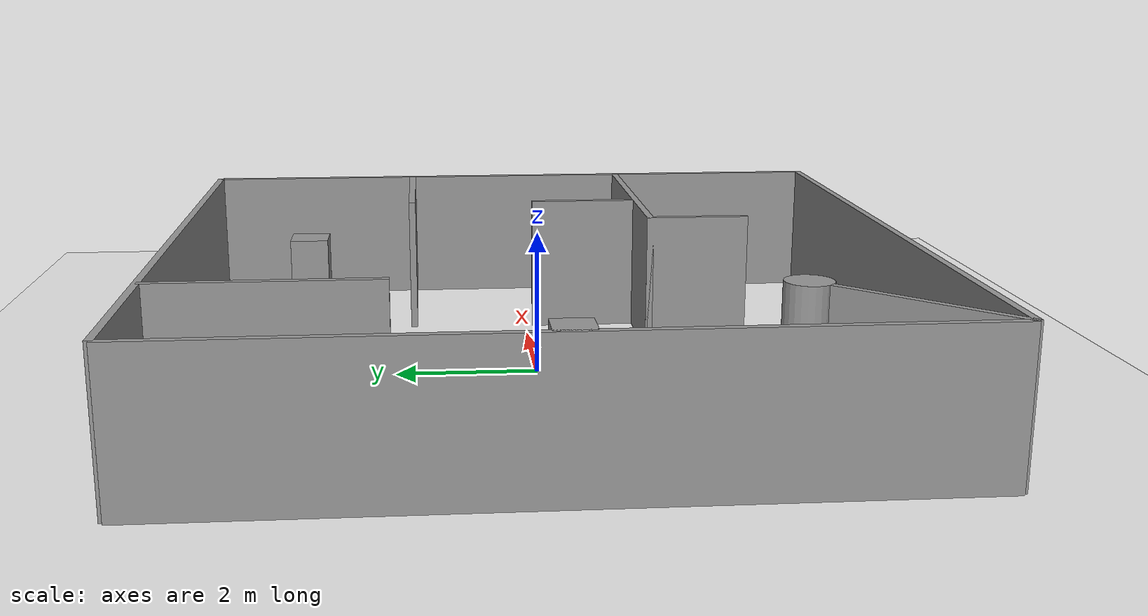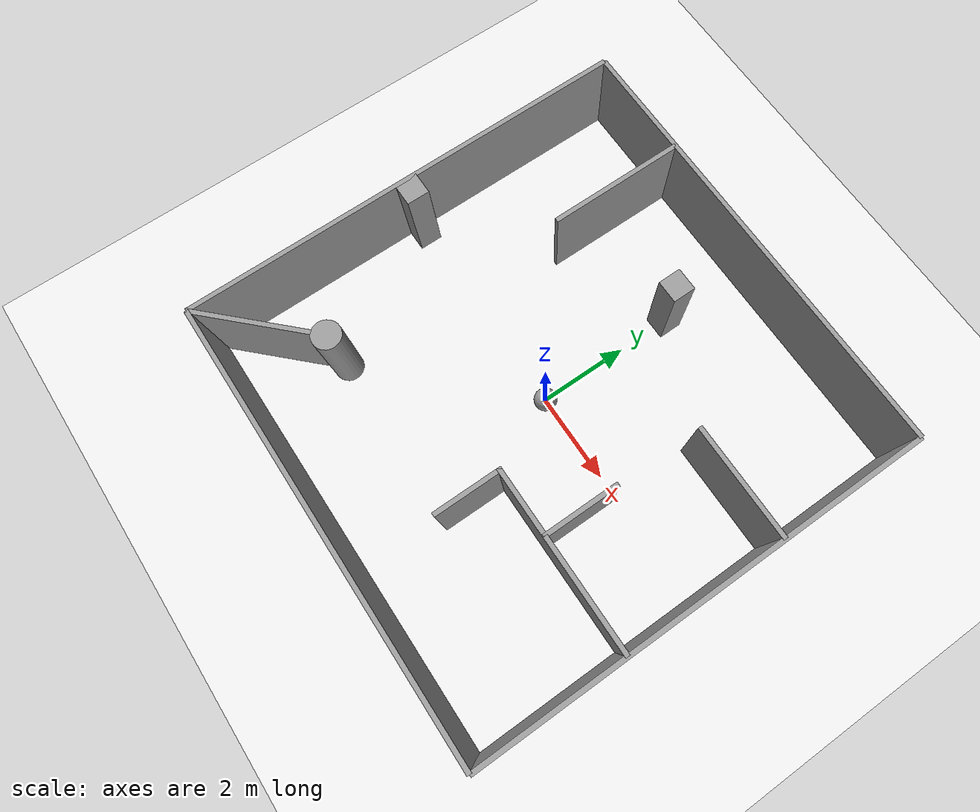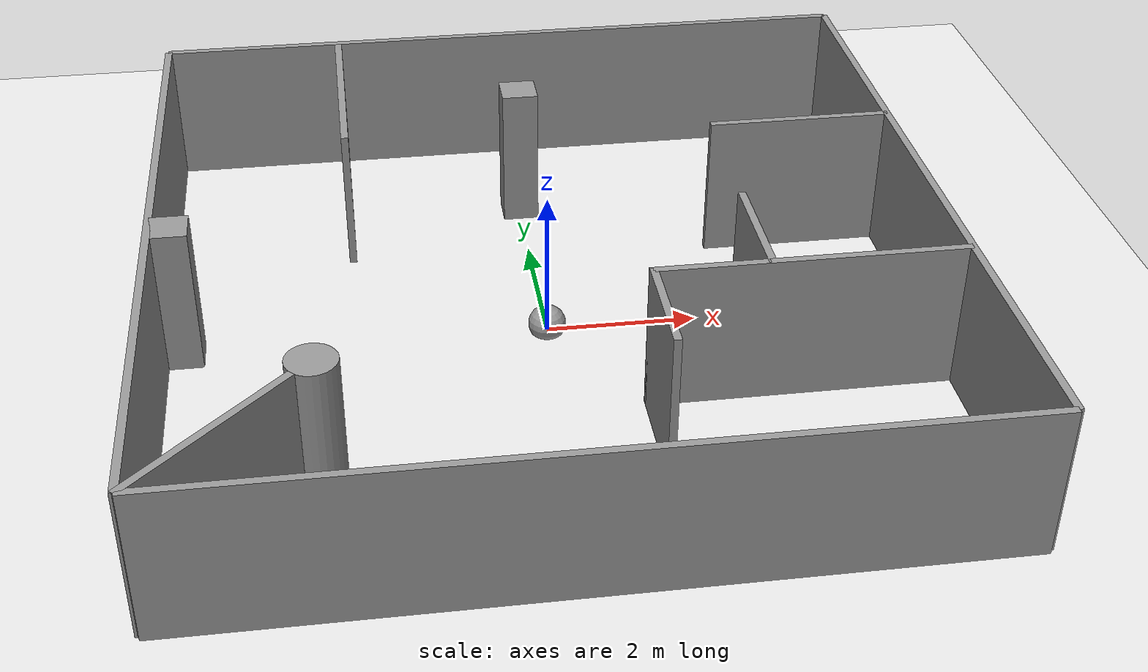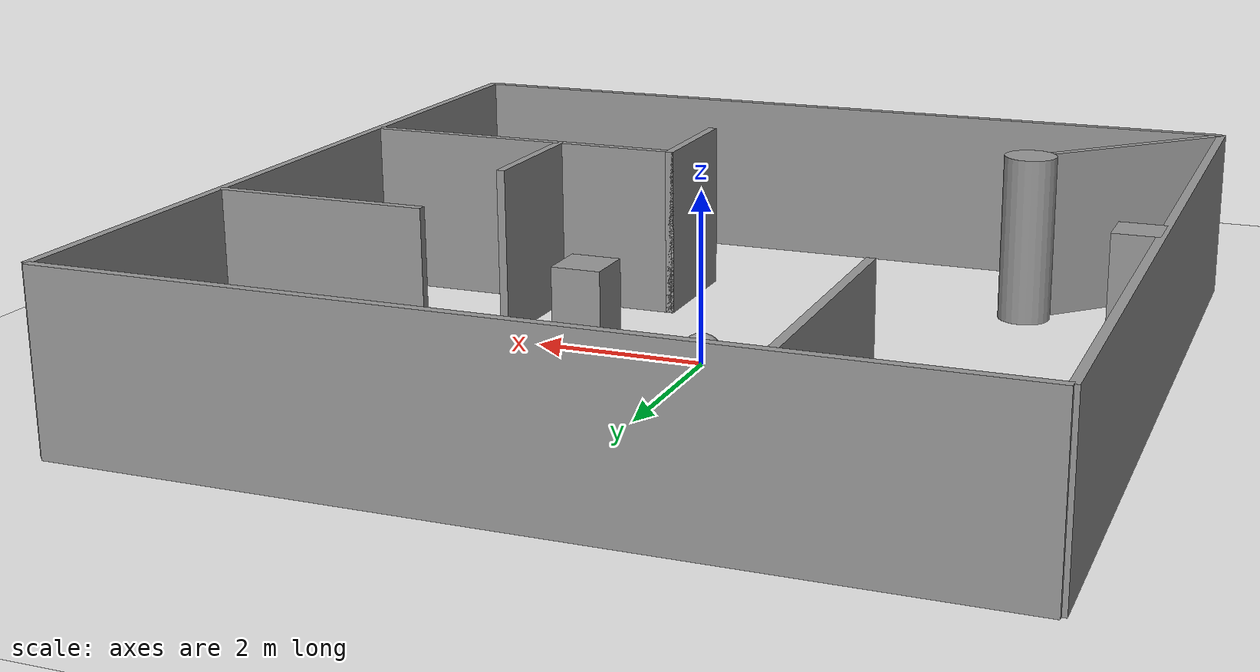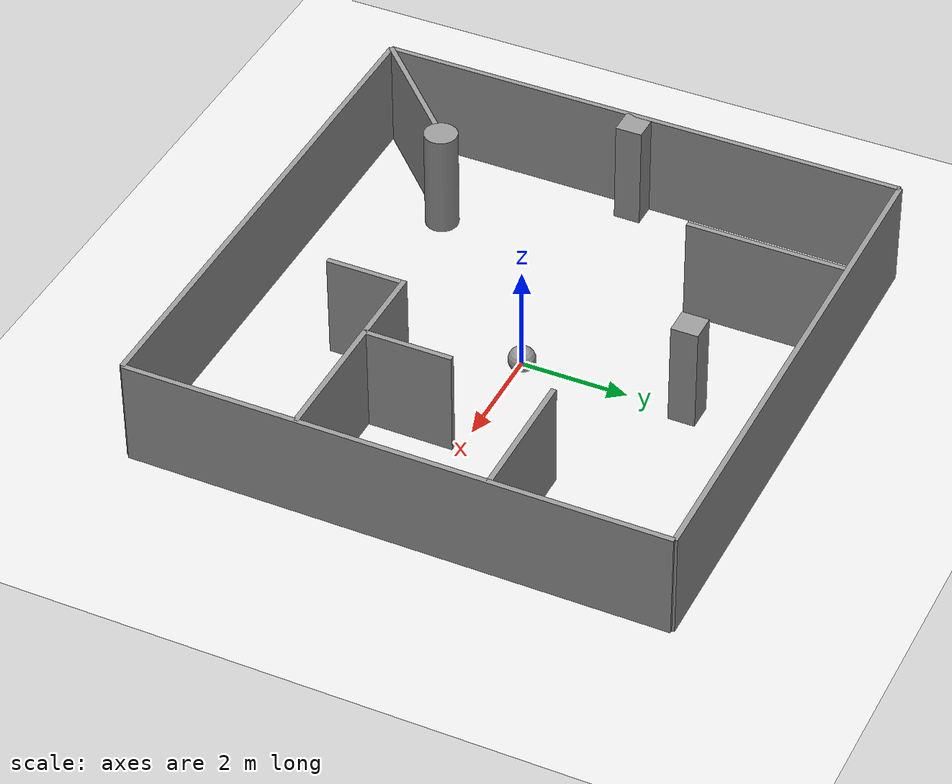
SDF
<sdf version="1.6">
 <world name="default">
  <light name="sun" type="directional">
   <pose>0 0 10 0 -0 0</pose>
   <diffuse>0.8 0.8 0.8 1</diffuse>
   <specular>0.2 0.2 0.2 1</specular>
   <attenuation>
    <range>1000</range>
    <constant>0.9</constant>
    <linear>0.01</linear>
    <quadratic>0.001</quadratic>
   </attenuation>
   <direction>-0.5 0.1 -0.9</direction>
  </light>
  <model name="ground_plane">
   <static>1</static>
   <link name="link">
    <collision name="collision">
     <geometry><plane><normal>0 0 1</normal><size>100 100</size></plane></geometry>
     <surface>
      <contact><collide_bitmask>65535</collide_bitmask></contact>
      <friction><ode><mu>100</mu><mu2>50</mu2></ode></friction>
     </surface>
    </collision>
    <visual name="visual">
     <cast_shadows>0</cast_shadows>
     <geometry><plane><normal>0 0 1</normal><size>100 100</size></plane></geometry>
     <material>
      <script><uri>file://media/materials/scripts/gazebo.material</uri><name>Gazebo/White</name></script>
     </material>
    </visual>
   </link>
  </model>
  <gravity>0 0 -9.8</gravity>
  <magnetic_field>6e-06 2.3e-05 -4.2e-05</magnetic_field>
  <atmosphere type="adiabatic"/>
  <physics name="default_physics" default="0" type="ode">
   <max_step_size>0.001</max_step_size>
   <real_time_factor>1</real_time_factor>
   <real_time_update_rate>1000</real_time_update_rate>
  </physics>
  <scene><ambient>0.4 0.4 0.4 1</ambient><background>0.7 0.7 0.7 1</background><shadows>1</shadows></scene>
  <spherical_coordinates>
   <surface_model>EARTH_WGS84</surface_model>
   <latitude_deg>0</latitude_deg>
   <longitude_deg>0</longitude_deg>
   <elevation>0</elevation>
   <heading_deg>0</heading_deg>
  </spherical_coordinates>
  <model name="small_environment">
   <link name="link_0">
    <inertial>
     <mass>1</mass>
     <inertia>
      <ixx>0.166667</ixx>
      <ixy>0</ixy>
      <ixz>0</ixz>
      <iyy>0.166667</iyy>
      <iyz>0</iyz>
      <izz>0.166667</izz>
     </inertia>
    </inertial>
    <pose>0 -5 1 0 -0 0</pose>
    <visual name="visual">
     <geometry><box><size>10 0.1 2</size></box></geometry>
     <material>
      <lighting>1</lighting>
      <script><uri>file://media/materials/scripts/gazebo.material</uri><name>Gazebo/Grey</name></script>
      <shader type="pixel"><normal_map>__default__</normal_map></shader>
      <ambient>0.3 0.3 0.3 1</ambient>
      <diffuse>0.7 0.7 0.7 1</diffuse>
      <specular>0.01 0.01 0.01 1</specular>
      <emissive>0 0 0 1</emissive>
     </material>
    </visual>
    <collision name="collision">
     <geometry><box><size>10 0.1 2</size></box></geometry>
     <surface>
      <friction>
       <ode><mu>1</mu><mu2>1</mu2><fdir1>0 0 0</fdir1><slip1>0</slip1><slip2>0</slip2></ode>
       <torsional>
        <coefficient>1</coefficient>
        <patch_radius>0</patch_radius>
        <surface_radius>0</surface_radius>
        <use_patch_radius>1</use_patch_radius>
        <ode><slip>0</slip></ode>
       </torsional>
      </friction>
      <bounce><restitution_coefficient>0</restitution_coefficient><threshold>1e+06</threshold></bounce>
      <contact>
       <collide_without_contact>0</collide_without_contact>
       <collide_without_contact_bitmask>1</collide_without_contact_bitmask>
       <collide_bitmask>1</collide_bitmask>
       <ode>
        <soft_cfm>0</soft_cfm>
        <soft_erp>0.2</soft_erp>
        <kp>1e+13</kp>
        <kd>1</kd>
        <max_vel>0.01</max_vel>
        <min_depth>0</min_depth>
       </ode>
       <bullet>
        <split_impulse>1</split_impulse>
        <split_impulse_penetration_threshold>-0.01</split_impulse_penetration_threshold>
        <soft_cfm>0</soft_cfm>
        <soft_erp>0.2</soft_erp>
        <kp>1e+13</kp>
        <kd>1</kd>
       </bullet>
      </contact>
     </surface>
    </collision>
   </link>
   <link name="link_0_clone">
    <inertial>
     <mass>1</mass>
     <inertia>
      <ixx>0.166667</ixx>
      <ixy>0</ixy>
      <ixz>0</ixz>
      <iyy>0.166667</iyy>
      <iyz>0</iyz>
      <izz>0.166667</izz>
     </inertia>
    </inertial>
    <pose>0 5 1 0 -0 0</pose>
    <visual name="visual">
     <geometry><box><size>10 0.1 2</size></box></geometry>
     <material>
      <lighting>1</lighting>
      <script><uri>file://media/materials/scripts/gazebo.material</uri><name>Gazebo/Grey</name></script>
      <shader type="pixel"><normal_map>__default__</normal_map></shader>
      <ambient>0.3 0.3 0.3 1</ambient>
      <diffuse>0.7 0.7 0.7 1</diffuse>
      <specular>0.01 0.01 0.01 1</specular>
      <emissive>0 0 0 1</emissive>
     </material>
    </visual>
    <collision name="collision">
     <geometry><box><size>10 0.1 2</size></box></geometry>
     <surface>
      <friction>
       <ode><mu>1</mu><mu2>1</mu2><fdir1>0 0 0</fdir1><slip1>0</slip1><slip2>0</slip2></ode>
       <torsional>
        <coefficient>1</coefficient>
        <patch_radius>0</patch_radius>
        <surface_radius>0</surface_radius>
        <use_patch_radius>1</use_patch_radius>
        <ode><slip>0</slip></ode>
       </torsional>
      </friction>
      <bounce><restitution_coefficient>0</restitution_coefficient><threshold>1e+06</threshold></bounce>
      <contact>
       <collide_without_contact>0</collide_without_contact>
       <collide_without_contact_bitmask>1</collide_without_contact_bitmask>
       <collide_bitmask>1</collide_bitmask>
       <ode>
        <soft_cfm>0</soft_cfm>
        <soft_erp>0.2</soft_erp>
        <kp>1e+13</kp>
        <kd>1</kd>
        <max_vel>0.01</max_vel>
        <min_depth>0</min_depth>
       </ode>
       <bullet>
        <split_impulse>1</split_impulse>
        <split_impulse_penetration_threshold>-0.01</split_impulse_penetration_threshold>
        <soft_cfm>0</soft_cfm>
        <soft_erp>0.2</soft_erp>
        <kp>1e+13</kp>
        <kd>1</kd>
       </bullet>
      </contact>
     </surface>
    </collision>
   </link>
   <link name="link_0_clone_0">
    <inertial>
     <mass>1</mass>
     <inertia>
      <ixx>0.166667</ixx>
      <ixy>0</ixy>
      <ixz>0</ixz>
      <iyy>0.166667</iyy>
      <iyz>0</iyz>
      <izz>0.166667</izz>
     </inertia>
    </inertial>
    <pose>-5 0 1 0 -0 0</pose>
    <visual name="visual">
     <geometry><box><size>0.1 10 2</size></box></geometry>
     <material>
      <lighting>1</lighting>
      <script><uri>file://media/materials/scripts/gazebo.material</uri><name>Gazebo/Grey</name></script>
      <shader type="pixel"><normal_map>__default__</normal_map></shader>
      <ambient>0.3 0.3 0.3 1</ambient>
      <diffuse>0.7 0.7 0.7 1</diffuse>
      <specular>0.01 0.01 0.01 1</specular>
      <emissive>0 0 0 1</emissive>
     </material>
    </visual>
    <collision name="collision">
     <geometry><box><size>0.1 10 2</size></box></geometry>
     <surface>
      <friction>
       <ode><mu>1</mu><mu2>1</mu2><fdir1>0 0 0</fdir1><slip1>0</slip1><slip2>0</slip2></ode>
       <torsional>
        <coefficient>1</coefficient>
        <patch_radius>0</patch_radius>
        <surface_radius>0</surface_radius>
        <use_patch_radius>1</use_patch_radius>
        <ode><slip>0</slip></ode>
       </torsional>
      </friction>
      <bounce><restitution_coefficient>0</restitution_coefficient><threshold>1e+06</threshold></bounce>
      <contact>
       <collide_without_contact>0</collide_without_contact>
       <collide_without_contact_bitmask>1</collide_without_contact_bitmask>
       <collide_bitmask>1</collide_bitmask>
       <ode>
        <soft_cfm>0</soft_cfm>
        <soft_erp>0.2</soft_erp>
        <kp>1e+13</kp>
        <kd>1</kd>
        <max_vel>0.01</max_vel>
        <min_depth>0</min_depth>
       </ode>
       <bullet>
        <split_impulse>1</split_impulse>
        <split_impulse_penetration_threshold>-0.01</split_impulse_penetration_threshold>
        <soft_cfm>0</soft_cfm>
        <soft_erp>0.2</soft_erp>
        <kp>1e+13</kp>
        <kd>1</kd>
       </bullet>
      </contact>
     </surface>
    </collision>
   </link>
   <link name="link_0_clone_0_clone">
    <inertial>
     <mass>1</mass>
     <inertia>
      <ixx>0.166667</ixx>
      <ixy>0</ixy>
      <ixz>0</ixz>
      <iyy>0.166667</iyy>
      <iyz>0</iyz>
      <izz>0.166667</izz>
     </inertia>
    </inertial>
    <pose>5 0 1 0 -0 0</pose>
    <visual name="visual">
     <geometry><box><size>0.1 10 2</size></box></geometry>
     <material>
      <lighting>1</lighting>
      <script><uri>file://media/materials/scripts/gazebo.material</uri><name>Gazebo/Grey</name></script>
      <shader type="pixel"><normal_map>__default__</normal_map></shader>
      <ambient>0.3 0.3 0.3 1</ambient>
      <diffuse>0.7 0.7 0.7 1</diffuse>
      <specular>0.01 0.01 0.01 1</specular>
      <emissive>0 0 0 1</emissive>
     </material>
    </visual>
    <collision name="collision">
     <geometry><box><size>0.1 10 2</size></box></geometry>
     <surface>
      <friction>
       <ode><mu>1</mu><mu2>1</mu2><fdir1>0 0 0</fdir1><slip1>0</slip1><slip2>0</slip2></ode>
       <torsional>
        <coefficient>1</coefficient>
        <patch_radius>0</patch_radius>
        <surface_radius>0</surface_radius>
        <use_patch_radius>1</use_patch_radius>
        <ode><slip>0</slip></ode>
       </torsional>
      </friction>
      <bounce><restitution_coefficient>0</restitution_coefficient><threshold>1e+06</threshold></bounce>
      <contact>
       <collide_without_contact>0</collide_without_contact>
       <collide_without_contact_bitmask>1</collide_without_contact_bitmask>
       <collide_bitmask>1</collide_bitmask>
       <ode>
        <soft_cfm>0</soft_cfm>
        <soft_erp>0.2</soft_erp>
        <kp>1e+13</kp>
        <kd>1</kd>
        <max_vel>0.01</max_vel>
        <min_depth>0</min_depth>
       </ode>
       <bullet>
        <split_impulse>1</split_impulse>
        <split_impulse_penetration_threshold>-0.01</split_impulse_penetration_threshold>
        <soft_cfm>0</soft_cfm>
        <soft_erp>0.2</soft_erp>
        <kp>1e+13</kp>
        <kd>1</kd>
       </bullet>
      </contact>
     </surface>
    </collision>
   </link>
   <link name="link_0_clone_0_clone_0">
    <inertial>
     <mass>1</mass>
     <inertia>
      <ixx>0.166667</ixx>
      <ixy>0</ixy>
      <ixz>0</ixz>
      <iyy>0.166667</iyy>
      <iyz>0</iyz>
      <izz>0.166667</izz>
     </inertia>
    </inertial>
    <pose>-2.5 3.5 1 0 -0 0</pose>
    <visual name="visual">
     <geometry><box><size>0.1 3 2</size></box></geometry>
     <material>
      <lighting>1</lighting>
      <script><uri>file://media/materials/scripts/gazebo.material</uri><name>Gazebo/Grey</name></script>
      <shader type="pixel"><normal_map>__default__</normal_map></shader>
      <ambient>0.3 0.3 0.3 1</ambient>
      <diffuse>0.7 0.7 0.7 1</diffuse>
      <specular>0.01 0.01 0.01 1</specular>
      <emissive>0 0 0 1</emissive>
     </material>
    </visual>
    <collision name="collision">
     <geometry><box><size>0.1 3 2</size></box></geometry>
     <surface>
      <friction>
       <ode><mu>1</mu><mu2>1</mu2><fdir1>0 0 0</fdir1><slip1>0</slip1><slip2>0</slip2></ode>
       <torsional>
        <coefficient>1</coefficient>
        <patch_radius>0</patch_radius>
        <surface_radius>0</surface_radius>
        <use_patch_radius>1</use_patch_radius>
        <ode><slip>0</slip></ode>
       </torsional>
      </friction>
      <bounce><restitution_coefficient>0</restitution_coefficient><threshold>1e+06</threshold></bounce>
      <contact>
       <collide_without_contact>0</collide_without_contact>
       <collide_without_contact_bitmask>1</collide_without_contact_bitmask>
       <collide_bitmask>1</collide_bitmask>
       <ode>
        <soft_cfm>0</soft_cfm>
        <soft_erp>0.2</soft_erp>
        <kp>1e+13</kp>
        <kd>1</kd>
        <max_vel>0.01</max_vel>
        <min_depth>0</min_depth>
       </ode>
       <bullet>
        <split_impulse>1</split_impulse>
        <split_impulse_penetration_threshold>-0.01</split_impulse_penetration_threshold>
        <soft_cfm>0</soft_cfm>
        <soft_erp>0.2</soft_erp>
        <kp>1e+13</kp>
        <kd>1</kd>
       </bullet>
      </contact>
     </surface>
    </collision>
   </link>
   <link name="link_0_clone_0_clone_0_clone_clone">
    <inertial>
     <mass>1</mass>
     <inertia>
      <ixx>0.166667</ixx>
      <ixy>0</ixy>
      <ixz>0</ixz>
      <iyy>0.166667</iyy>
      <iyz>0</iyz>
      <izz>0.166667</izz>
     </inertia>
    </inertial>
    <pose>1.05 -2.45 1 0 -0 0</pose>
    <visual name="visual">
     <geometry><box><size>0.1 1.5 2</size></box></geometry>
     <material>
      <lighting>1</lighting>
      <script><uri>file://media/materials/scripts/gazebo.material</uri><name>Gazebo/Grey</name></script>
      <shader type="pixel"><normal_map>__default__</normal_map></shader>
      <ambient>0.3 0.3 0.3 1</ambient>
      <diffuse>0.7 0.7 0.7 1</diffuse>
      <specular>0.01 0.01 0.01 1</specular>
      <emissive>0 0 0 1</emissive>
     </material>
    </visual>
    <collision name="collision">
     <geometry><box><size>0.1 1.5 2</size></box></geometry>
     <surface>
      <friction>
       <ode><mu>1</mu><mu2>1</mu2><fdir1>0 0 0</fdir1><slip1>0</slip1><slip2>0</slip2></ode>
       <torsional>
        <coefficient>1</coefficient>
        <patch_radius>0</patch_radius>
        <surface_radius>0</surface_radius>
        <use_patch_radius>1</use_patch_radius>
        <ode><slip>0</slip></ode>
       </torsional>
      </friction>
      <bounce><restitution_coefficient>0</restitution_coefficient><threshold>1e+06</threshold></bounce>
      <contact>
       <collide_without_contact>0</collide_without_contact>
       <collide_without_contact_bitmask>1</collide_without_contact_bitmask>
       <collide_bitmask>1</collide_bitmask>
       <ode>
        <soft_cfm>0</soft_cfm>
        <soft_erp>0.2</soft_erp>
        <kp>1e+13</kp>
        <kd>1</kd>
        <max_vel>0.01</max_vel>
        <min_depth>0</min_depth>
       </ode>
       <bullet>
        <split_impulse>1</split_impulse>
        <split_impulse_penetration_threshold>-0.01</split_impulse_penetration_threshold>
        <soft_cfm>0</soft_cfm>
        <soft_erp>0.2</soft_erp>
        <kp>1e+13</kp>
        <kd>1</kd>
       </bullet>
      </contact>
     </surface>
    </collision>
   </link>
   <link name="link_0_clone_0_clone_0_clone_clone_clone">
    <inertial>
     <mass>1</mass>
     <inertia>
      <ixx>0.166667</ixx>
      <ixy>0</ixy>
      <ixz>0</ixz>
      <iyy>0.166667</iyy>
      <iyz>0</iyz>
      <izz>0.166667</izz>
     </inertia>
    </inertial>
    <pose>2.5 -0.95 1 0 -0 0</pose>
    <visual name="visual">
     <geometry><box><size>0.1 1.66667 2</size></box></geometry>
     <material>
      <lighting>1</lighting>
      <script><uri>file://media/materials/scripts/gazebo.material</uri><name>Gazebo/Grey</name></script>
      <shader type="pixel"><normal_map>__default__</normal_map></shader>
      <ambient>0.3 0.3 0.3 1</ambient>
      <diffuse>0.7 0.7 0.7 1</diffuse>
      <specular>0.01 0.01 0.01 1</specular>
      <emissive>0 0 0 1</emissive>
     </material>
    </visual>
    <collision name="collision">
     <geometry><box><size>0.1 1.66667 2</size></box></geometry>
     <surface>
      <friction>
       <ode><mu>1</mu><mu2>1</mu2><fdir1>0 0 0</fdir1><slip1>0</slip1><slip2>0</slip2></ode>
       <torsional>
        <coefficient>1</coefficient>
        <patch_radius>0</patch_radius>
        <surface_radius>0</surface_radius>
        <use_patch_radius>1</use_patch_radius>
        <ode><slip>0</slip></ode>
       </torsional>
      </friction>
      <bounce><restitution_coefficient>0</restitution_coefficient><threshold>1e+06</threshold></bounce>
      <contact>
       <collide_without_contact>0</collide_without_contact>
       <collide_without_contact_bitmask>1</collide_without_contact_bitmask>
       <collide_bitmask>1</collide_bitmask>
       <ode>
        <soft_cfm>0</soft_cfm>
        <soft_erp>0.2</soft_erp>
        <kp>1e+13</kp>
        <kd>1</kd>
        <max_vel>0.01</max_vel>
        <min_depth>0</min_depth>
       </ode>
       <bullet>
        <split_impulse>1</split_impulse>
        <split_impulse_penetration_threshold>-0.01</split_impulse_penetration_threshold>
        <soft_cfm>0</soft_cfm>
        <soft_erp>0.2</soft_erp>
        <kp>1e+13</kp>
        <kd>1</kd>
       </bullet>
      </contact>
     </surface>
    </collision>
   </link>
   <link name="link_0_clone_1">
    <inertial>
     <mass>1</mass>
     <inertia>
      <ixx>0.166667</ixx>
      <ixy>0</ixy>
      <ixz>0</ixz>
      <iyy>0.166667</iyy>
      <iyz>0</iyz>
      <izz>0.166667</izz>
     </inertia>
    </inertial>
    <pose>-4.125 -4.125 1 0 -0 0</pose>
    <visual name="visual">
     <pose>0 0 0 0 -0 0.785398</pose>
     <geometry><box><size>2.5 0.1 2</size></box></geometry>
     <material>
      <lighting>1</lighting>
      <script><uri>file://media/materials/scripts/gazebo.material</uri><name>Gazebo/Grey</name></script>
      <shader type="pixel"><normal_map>__default__</normal_map></shader>
      <ambient>0.3 0.3 0.3 1</ambient>
      <diffuse>0.7 0.7 0.7 1</diffuse>
      <specular>0.01 0.01 0.01 1</specular>
      <emissive>0 0 0 1</emissive>
     </material>
    </visual>
    <collision name="collision">
     <pose>0 0 0 0 -0 0.785398</pose>
     <geometry><box><size>2.5 0.1 2</size></box></geometry>
     <surface>
      <friction>
       <ode><mu>1</mu><mu2>1</mu2><fdir1>0 0 0</fdir1><slip1>0</slip1><slip2>0</slip2></ode>
       <torsional>
        <coefficient>1</coefficient>
        <patch_radius>0</patch_radius>
        <surface_radius>0</surface_radius>
        <use_patch_radius>1</use_patch_radius>
        <ode><slip>0</slip></ode>
       </torsional>
      </friction>
      <bounce><restitution_coefficient>0</restitution_coefficient><threshold>1e+06</threshold></bounce>
      <contact>
       <collide_without_contact>0</collide_without_contact>
       <collide_without_contact_bitmask>1</collide_without_contact_bitmask>
       <collide_bitmask>1</collide_bitmask>
       <ode>
        <soft_cfm>0</soft_cfm>
        <soft_erp>0.2</soft_erp>
        <kp>1e+13</kp>
        <kd>1</kd>
        <max_vel>0.01</max_vel>
        <min_depth>0</min_depth>
       </ode>
       <bullet>
        <split_impulse>1</split_impulse>
        <split_impulse_penetration_threshold>-0.01</split_impulse_penetration_threshold>
        <soft_cfm>0</soft_cfm>
        <soft_erp>0.2</soft_erp>
        <kp>1e+13</kp>
        <kd>1</kd>
       </bullet>
      </contact>
     </surface>
    </collision>
   </link>
   <link name="link_0_clone_clone">
    <inertial>
     <mass>1</mass>
     <inertia>
      <ixx>0.166667</ixx>
      <ixy>0</ixy>
      <ixz>0</ixz>
      <iyy>0.166667</iyy>
      <iyz>0</iyz>
      <izz>0.166667</izz>
     </inertia>
    </inertial>
    <pose>3.75 1.75 1 0 -0 0</pose>
    <visual name="visual">
     <geometry><box><size>2.5 0.1 2</size></box></geometry>
     <material>
      <lighting>1</lighting>
      <script><uri>file://media/materials/scripts/gazebo.material</uri><name>Gazebo/Grey</name></script>
      <shader type="pixel"><normal_map>__default__</normal_map></shader>
      <ambient>0.3 0.3 0.3 1</ambient>
      <diffuse>0.7 0.7 0.7 1</diffuse>
      <specular>0.01 0.01 0.01 1</specular>
      <emissive>0 0 0 1</emissive>
     </material>
    </visual>
    <collision name="collision">
     <geometry><box><size>2.5 0.1 2</size></box></geometry>
     <surface>
      <friction>
       <ode><mu>1</mu><mu2>1</mu2><fdir1>0 0 0</fdir1><slip1>0</slip1><slip2>0</slip2></ode>
       <torsional>
        <coefficient>1</coefficient>
        <patch_radius>0</patch_radius>
        <surface_radius>0</surface_radius>
        <use_patch_radius>1</use_patch_radius>
        <ode><slip>0</slip></ode>
       </torsional>
      </friction>
      <bounce><restitution_coefficient>0</restitution_coefficient><threshold>1e+06</threshold></bounce>
      <contact>
       <collide_without_contact>0</collide_without_contact>
       <collide_without_contact_bitmask>1</collide_without_contact_bitmask>
       <collide_bitmask>1</collide_bitmask>
       <ode>
        <soft_cfm>0</soft_cfm>
        <soft_erp>0.2</soft_erp>
        <kp>1e+13</kp>
        <kd>1</kd>
        <max_vel>0.01</max_vel>
        <min_depth>0</min_depth>
       </ode>
       <bullet>
        <split_impulse>1</split_impulse>
        <split_impulse_penetration_threshold>-0.01</split_impulse_penetration_threshold>
        <soft_cfm>0</soft_cfm>
        <soft_erp>0.2</soft_erp>
        <kp>1e+13</kp>
        <kd>1</kd>
       </bullet>
      </contact>
     </surface>
    </collision>
   </link>
   <link name="link_0_clone_clone_clone">
    <inertial>
     <mass>1</mass>
     <inertia>
      <ixx>0.166667</ixx>
      <ixy>0</ixy>
      <ixz>0</ixz>
      <iyy>0.166667</iyy>
      <iyz>0</iyz>
      <izz>0.166667</izz>
     </inertia>
    </inertial>
    <pose>3 -1.75 1 0 -0 0</pose>
    <visual name="visual">
     <geometry><box><size>4 0.1 2</size></box></geometry>
     <material>
      <lighting>1</lighting>
      <script><uri>file://media/materials/scripts/gazebo.material</uri><name>Gazebo/Grey</name></script>
      <shader type="pixel"><normal_map>__default__</normal_map></shader>
      <ambient>0.3 0.3 0.3 1</ambient>
      <diffuse>0.7 0.7 0.7 1</diffuse>
      <specular>0.01 0.01 0.01 1</specular>
      <emissive>0 0 0 1</emissive>
     </material>
    </visual>
    <collision name="collision">
     <geometry><box><size>4 0.1 2</size></box></geometry>
     <surface>
      <friction>
       <ode><mu>1</mu><mu2>1</mu2><fdir1>0 0 0</fdir1><slip1>0</slip1><slip2>0</slip2></ode>
       <torsional>
        <coefficient>1</coefficient>
        <patch_radius>0</patch_radius>
        <surface_radius>0</surface_radius>
        <use_patch_radius>1</use_patch_radius>
        <ode><slip>0</slip></ode>
       </torsional>
      </friction>
      <bounce><restitution_coefficient>0</restitution_coefficient><threshold>1e+06</threshold></bounce>
      <contact>
       <collide_without_contact>0</collide_without_contact>
       <collide_without_contact_bitmask>1</collide_without_contact_bitmask>
       <collide_bitmask>1</collide_bitmask>
       <ode>
        <soft_cfm>0</soft_cfm>
        <soft_erp>0.2</soft_erp>
        <kp>1e+13</kp>
        <kd>1</kd>
        <max_vel>0.01</max_vel>
        <min_depth>0</min_depth>
       </ode>
       <bullet>
        <split_impulse>1</split_impulse>
        <split_impulse_penetration_threshold>-0.01</split_impulse_penetration_threshold>
        <soft_cfm>0</soft_cfm>
        <soft_erp>0.2</soft_erp>
        <kp>1e+13</kp>
        <kd>1</kd>
       </bullet>
      </contact>
     </surface>
    </collision>
   </link>
   <link name="link_1">
    <inertial>
     <mass>1</mass>
     <inertia>
      <ixx>0.166667</ixx>
      <ixy>0</ixy>
      <ixz>0</ixz>
      <iyy>0.166667</iyy>
      <iyz>0</iyz>
      <izz>0.166667</izz>
     </inertia>
    </inertial>
    <pose>-4.75 0 1 0 -0 0</pose>
    <visual name="visual">
     <geometry><box><size>0.5 0.5 2</size></box></geometry>
     <material>
      <lighting>1</lighting>
      <script><uri>file://media/materials/scripts/gazebo.material</uri><name>Gazebo/Grey</name></script>
      <shader type="pixel"><normal_map>__default__</normal_map></shader>
      <ambient>0.3 0.3 0.3 1</ambient>
      <diffuse>0.7 0.7 0.7 1</diffuse>
      <specular>0.01 0.01 0.01 1</specular>
      <emissive>0 0 0 1</emissive>
     </material>
    </visual>
    <collision name="collision">
     <geometry><box><size>0.5 0.5 2</size></box></geometry>
     <surface>
      <friction>
       <ode><mu>1</mu><mu2>1</mu2><fdir1>0 0 0</fdir1><slip1>0</slip1><slip2>0</slip2></ode>
       <torsional>
        <coefficient>1</coefficient>
        <patch_radius>0</patch_radius>
        <surface_radius>0</surface_radius>
        <use_patch_radius>1</use_patch_radius>
        <ode><slip>0</slip></ode>
       </torsional>
      </friction>
      <bounce><restitution_coefficient>0</restitution_coefficient><threshold>1e+06</threshold></bounce>
      <contact>
       <collide_without_contact>0</collide_without_contact>
       <collide_without_contact_bitmask>1</collide_without_contact_bitmask>
       <collide_bitmask>1</collide_bitmask>
       <ode>
        <soft_cfm>0</soft_cfm>
        <soft_erp>0.2</soft_erp>
        <kp>1e+13</kp>
        <kd>1</kd>
        <max_vel>0.01</max_vel>
        <min_depth>0</min_depth>
       </ode>
       <bullet>
        <split_impulse>1</split_impulse>
        <split_impulse_penetration_threshold>-0.01</split_impulse_penetration_threshold>
        <soft_cfm>0</soft_cfm>
        <soft_erp>0.2</soft_erp>
        <kp>1e+13</kp>
        <kd>1</kd>
       </bullet>
      </contact>
     </surface>
    </collision>
   </link>
   <link name="link_1_clone">
    <inertial>
     <mass>1</mass>
     <inertia>
      <ixx>0.166667</ixx>
      <ixy>0</ixy>
      <ixz>0</ixz>
      <iyy>0.166667</iyy>
      <iyz>0</iyz>
      <izz>0.166667</izz>
     </inertia>
    </inertial>
    <pose>0 3.125 1 0 -0 0</pose>
    <visual name="visual">
     <geometry><box><size>0.5 0.5 2</size></box></geometry>
     <material>
      <lighting>1</lighting>
      <script><uri>file://media/materials/scripts/gazebo.material</uri><name>Gazebo/Grey</name></script>
      <shader type="pixel"><normal_map>__default__</normal_map></shader>
      <ambient>0.3 0.3 0.3 1</ambient>
      <diffuse>0.7 0.7 0.7 1</diffuse>
      <specular>0.01 0.01 0.01 1</specular>
      <emissive>0 0 0 1</emissive>
     </material>
    </visual>
    <collision name="collision">
     <geometry><box><size>0.5 0.5 2</size></box></geometry>
     <surface>
      <friction>
       <ode><mu>1</mu><mu2>1</mu2><fdir1>0 0 0</fdir1><slip1>0</slip1><slip2>0</slip2></ode>
       <torsional>
        <coefficient>1</coefficient>
        <patch_radius>0</patch_radius>
        <surface_radius>0</surface_radius>
        <use_patch_radius>1</use_patch_radius>
        <ode><slip>0</slip></ode>
       </torsional>
      </friction>
      <bounce><restitution_coefficient>0</restitution_coefficient><threshold>1e+06</threshold></bounce>
      <contact>
       <collide_without_contact>0</collide_without_contact>
       <collide_without_contact_bitmask>1</collide_without_contact_bitmask>
       <collide_bitmask>1</collide_bitmask>
       <ode>
        <soft_cfm>0</soft_cfm>
        <soft_erp>0.2</soft_erp>
        <kp>1e+13</kp>
        <kd>1</kd>
        <max_vel>0.01</max_vel>
        <min_depth>0</min_depth>
       </ode>
       <bullet>
        <split_impulse>1</split_impulse>
        <split_impulse_penetration_threshold>-0.01</split_impulse_penetration_threshold>
        <soft_cfm>0</soft_cfm>
        <soft_erp>0.2</soft_erp>
        <kp>1e+13</kp>
        <kd>1</kd>
       </bullet>
      </contact>
     </surface>
    </collision>
   </link>
   <link name="link_4">
    <inertial>
     <mass>1</mass>
     <inertia><ixx>0.1</ixx><ixy>0</ixy><ixz>0</ixz><iyy>0.1</iyy><iyz>0</iyz><izz>0.1</izz></inertia>
    </inertial>
    <pose>0 0 0.107143 0 -0 0</pose>
    <visual name="visual">
     <geometry><sphere><radius>0.25</radius></sphere></geometry>
     <material>
      <lighting>1</lighting>
      <script><uri>file://media/materials/scripts/gazebo.material</uri><name>Gazebo/Grey</name></script>
      <shader type="pixel"><normal_map>__default__</normal_map></shader>
      <ambient>0.3 0.3 0.3 1</ambient>
      <diffuse>0.7 0.7 0.7 1</diffuse>
      <specular>0.01 0.01 0.01 1</specular>
      <emissive>0 0 0 1</emissive>
     </material>
    </visual>
    <collision name="collision">
     <geometry><sphere><radius>0.25</radius></sphere></geometry>
     <surface>
      <friction>
       <ode><mu>1</mu><mu2>1</mu2><fdir1>0 0 0</fdir1><slip1>0</slip1><slip2>0</slip2></ode>
       <torsional>
        <coefficient>1</coefficient>
        <patch_radius>0</patch_radius>
        <surface_radius>0</surface_radius>
        <use_patch_radius>1</use_patch_radius>
        <ode><slip>0</slip></ode>
       </torsional>
      </friction>
      <bounce><restitution_coefficient>0</restitution_coefficient><threshold>1e+06</threshold></bounce>
      <contact>
       <collide_without_contact>0</collide_without_contact>
       <collide_without_contact_bitmask>1</collide_without_contact_bitmask>
       <collide_bitmask>1</collide_bitmask>
       <ode>
        <soft_cfm>0</soft_cfm>
        <soft_erp>0.2</soft_erp>
        <kp>1e+13</kp>
        <kd>1</kd>
        <max_vel>0.01</max_vel>
        <min_depth>0</min_depth>
       </ode>
       <bullet>
        <split_impulse>1</split_impulse>
        <split_impulse_penetration_threshold>-0.01</split_impulse_penetration_threshold>
        <soft_cfm>0</soft_cfm>
        <soft_erp>0.2</soft_erp>
        <kp>1e+13</kp>
        <kd>1</kd>
       </bullet>
      </contact>
     </surface>
    </collision>
   </link>
   <link name="link_5">
    <inertial>
     <mass>1</mass>
     <inertia><ixx>0.145833</ixx><ixy>0</ixy><ixz>0</ixz><iyy>0.145833</iyy><iyz>0</iyz><izz>0.125</izz></inertia>
    </inertial>
    <pose>-3.025 -3.025 1 0 -0 0</pose>
    <visual name="visual">
     <geometry><cylinder><radius>0.3125</radius><length>2</length></cylinder></geometry>
     <material>
      <lighting>1</lighting>
      <script><uri>file://media/materials/scripts/gazebo.material</uri><name>Gazebo/Grey</name></script>
      <shader type="pixel"><normal_map>__default__</normal_map></shader>
      <ambient>0.3 0.3 0.3 1</ambient>
      <diffuse>0.7 0.7 0.7 1</diffuse>
      <specular>0.01 0.01 0.01 1</specular>
      <emissive>0 0 0 1</emissive>
     </material>
    </visual>
    <collision name="collision">
     <geometry><cylinder><radius>0.3125</radius><length>2</length></cylinder></geometry>
     <surface>
      <friction>
       <ode><mu>1</mu><mu2>1</mu2><fdir1>0 0 0</fdir1><slip1>0</slip1><slip2>0</slip2></ode>
       <torsional>
        <coefficient>1</coefficient>
        <patch_radius>0</patch_radius>
        <surface_radius>0</surface_radius>
        <use_patch_radius>1</use_patch_radius>
        <ode><slip>0</slip></ode>
       </torsional>
      </friction>
      <bounce><restitution_coefficient>0</restitution_coefficient><threshold>1e+06</threshold></bounce>
      <contact>
       <collide_without_contact>0</collide_without_contact>
       <collide_without_contact_bitmask>1</collide_without_contact_bitmask>
       <collide_bitmask>1</collide_bitmask>
       <ode>
        <soft_cfm>0</soft_cfm>
        <soft_erp>0.2</soft_erp>
        <kp>1e+13</kp>
        <kd>1</kd>
        <max_vel>0.01</max_vel>
        <min_depth>0</min_depth>
       </ode>
       <bullet>
        <split_impulse>1</split_impulse>
        <split_impulse_penetration_threshold>-0.01</split_impulse_penetration_threshold>
        <soft_cfm>0</soft_cfm>
        <soft_erp>0.2</soft_erp>
        <kp>1e+13</kp>
        <kd>1</kd>
       </bullet>
      </contact>
     </surface>
    </collision>
   </link>
   <static>1</static>
  </model>
 </world>
</sdf>
